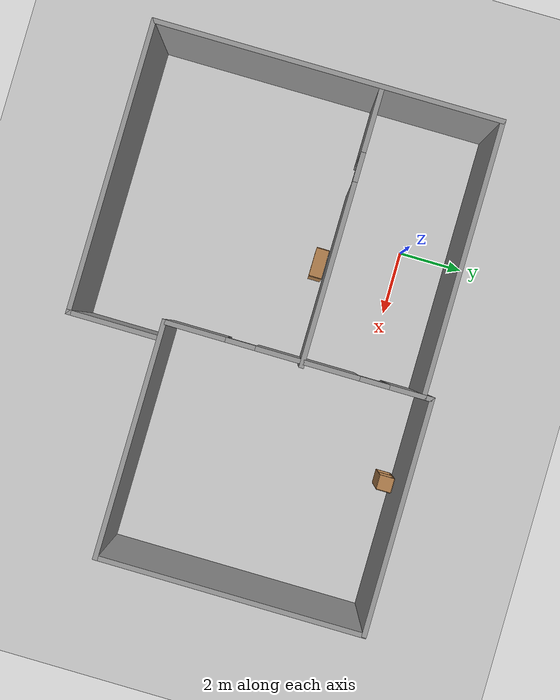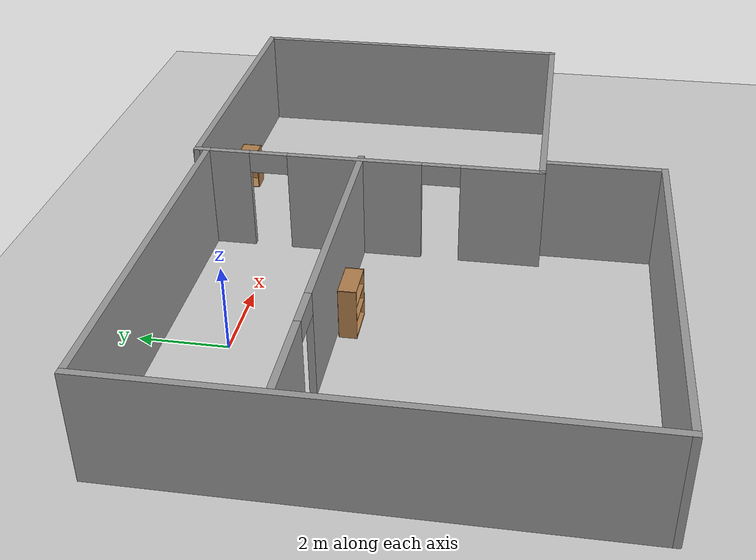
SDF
<sdf version="1.6">
 <world name="default">
  <light name="sun" type="directional">
   <pose>0 0 10 0 -0 0</pose>
   <diffuse>0.8 0.8 0.8 1</diffuse>
   <specular>0.1 0.1 0.1 1</specular>
   <attenuation>
    <range>1000</range>
    <constant>0.9</constant>
    <linear>0.01</linear>
    <quadratic>0.001</quadratic>
   </attenuation>
   <direction>-0.5 0.5 -1</direction>
  </light>
  <model name="ground_plane">
   <static>1</static>
   <link name="link">
    <collision name="collision">
     <geometry><plane><normal>0 0 1</normal><size>100 100</size></plane></geometry>
     <surface><friction><ode><mu>100</mu><mu2>50</mu2></ode></friction></surface>
    </collision>
    <visual name="visual">
     <cast_shadows>0</cast_shadows>
     <geometry><plane><normal>0 0 1</normal><size>100 100</size></plane></geometry>
     <material>
      <script><uri>file://media/materials/scripts/gazebo.material</uri><name>Gazebo/Grey</name></script>
     </material>
    </visual>
   </link>
  </model>
  <gravity>0 0 -9.8</gravity>
  <magnetic_field>6e-06 2.3e-05 -4.2e-05</magnetic_field>
  <atmosphere type="adiabatic"/>
  <physics name="default_physics" default="0" type="ode">
   <max_step_size>0.001</max_step_size>
   <real_time_factor>1</real_time_factor>
   <real_time_update_rate>1000</real_time_update_rate>
  </physics>
  <scene><ambient>0.4 0.4 0.4 1</ambient><background>0.7 0.7 0.7 1</background><shadows>1</shadows></scene>
  <spherical_coordinates>
   <surface_model>EARTH_WGS84</surface_model>
   <latitude_deg>0</latitude_deg>
   <longitude_deg>0</longitude_deg>
   <elevation>0</elevation>
   <heading_deg>0</heading_deg>
  </spherical_coordinates>
  <model name="littlehouse">
   <pose>3.5511 -3.64478 0 0 -0 0</pose>
   <link name="Wall_17">
    <collision name="Wall_17_Collision">
     <geometry><box><size>10.75 0.15 2.5</size></box></geometry>
     <pose>0 0 1.25 0 -0 0</pose>
    </collision>
    <visual name="Wall_17_Visual">
     <pose>0 0 1.25 0 -0 0</pose>
     <geometry><box><size>10.75 0.15 2.5</size></box></geometry>
     <material>
      <script><uri>file://media/materials/scripts/gazebo.material</uri><name>Gazebo/Grey</name></script>
      <ambient>1 1 1 1</ambient>
     </material>
    </visual>
    <pose>-7.725 -0.125 0 0 -0 1.5708</pose>
   </link>
   <link name="Wall_18">
    <collision name="Wall_18_Collision">
     <geometry><box><size>8.5 0.15 2.5</size></box></geometry>
     <pose>0 0 1.25 0 -0 0</pose>
    </collision>
    <visual name="Wall_18_Visual">
     <pose>0 0 1.25 0 -0 0</pose>
     <geometry><box><size>8.5 0.15 2.5</size></box></geometry>
     <material>
      <script><uri>file://media/materials/scripts/gazebo.material</uri><name>Gazebo/Grey</name></script>
      <ambient>1 1 1 1</ambient>
     </material>
    </visual>
    <pose>-3.55 5.175 0 0 -0 0</pose>
   </link>
   <link name="Wall_19">
    <pose>0.625 1.25 0 0 0 -1.5708</pose>
    <visual name="Wall_19_Visual_0">
     <pose>-3.44751 0 1.25 0 -0 0</pose>
     <geometry><box><size>1.10499 0.15 2.5</size></box></geometry>
     <material>
      <script><uri>file://media/materials/scripts/gazebo.material</uri><name>Gazebo/Grey</name></script>
      <ambient>1 1 1 1</ambient>
     </material>
    </visual>
    <collision name="Wall_19_Collision_0">
     <geometry><box><size>1.10499 0.15 2.5</size></box></geometry>
     <pose>-3.44751 0 1.25 0 -0 0</pose>
    </collision>
    <visual name="Wall_19_Visual_1">
     <pose>-0.411919 0 1.25 0 -0 0</pose>
     <geometry><box><size>3.16619 0.15 2.5</size></box></geometry>
     <material>
      <script><uri>file://media/materials/scripts/gazebo.material</uri><name>Gazebo/Grey</name></script>
      <ambient>1 1 1 1</ambient>
     </material>
    </visual>
    <collision name="Wall_19_Collision_1">
     <geometry><box><size>3.16619 0.15 2.5</size></box></geometry>
     <pose>-0.411919 0 1.25 0 -0 0</pose>
    </collision>
    <visual name="Wall_19_Visual_2">
     <pose>3.03559 0 1.25 0 -0 0</pose>
     <geometry><box><size>1.92882 0.15 2.5</size></box></geometry>
     <material>
      <script><uri>file://media/materials/scripts/gazebo.material</uri><name>Gazebo/Grey</name></script>
      <ambient>1 1 1 1</ambient>
     </material>
    </visual>
    <collision name="Wall_19_Collision_2">
     <geometry><box><size>1.92882 0.15 2.5</size></box></geometry>
     <pose>3.03559 0 1.25 0 -0 0</pose>
    </collision>
    <visual name="Wall_19_Visual_3">
     <pose>-2.44501 0 2.25 0 -0 0</pose>
     <geometry><box><size>0.9 0.15 0.5</size></box></geometry>
     <material>
      <script><uri>file://media/materials/scripts/gazebo.material</uri><name>Gazebo/Grey</name></script>
      <ambient>1 1 1 1</ambient>
     </material>
    </visual>
    <collision name="Wall_19_Collision_3">
     <geometry><box><size>0.9 0.15 0.5</size></box></geometry>
     <pose>-2.44501 0 2.25 0 -0 0</pose>
    </collision>
    <visual name="Wall_19_Visual_4">
     <pose>1.62118 0 2.25 0 -0 0</pose>
     <geometry><box><size>0.9 0.15 0.5</size></box></geometry>
     <material>
      <script><uri>file://media/materials/scripts/gazebo.material</uri><name>Gazebo/Grey</name></script>
      <ambient>1 1 1 1</ambient>
     </material>
    </visual>
    <collision name="Wall_19_Collision_4">
     <geometry><box><size>0.9 0.15 0.5</size></box></geometry>
     <pose>1.62118 0 2.25 0 -0 0</pose>
    </collision>
   </link>
   <link name="Wall_20">
    <collision name="Wall_20_Collision">
     <geometry><box><size>7.25 0.15 2.5</size></box></geometry>
     <pose>0 0 1.25 0 -0 0</pose>
    </collision>
    <visual name="Wall_20_Visual">
     <pose>0 0 1.25 0 -0 0</pose>
     <geometry><box><size>7.25 0.15 2.5</size></box></geometry>
     <material>
      <script><uri>file://media/materials/scripts/gazebo.material</uri><name>Gazebo/Grey</name></script>
      <ambient>1 1 1 1</ambient>
     </material>
    </visual>
    <pose>4.175 -2.675 0 0 -0 0</pose>
   </link>
   <link name="Wall_21">
    <collision name="Wall_21_Collision">
     <geometry><box><size>8.25 0.15 2.5</size></box></geometry>
     <pose>0 0 1.25 0 -0 0</pose>
    </collision>
    <visual name="Wall_21_Visual">
     <pose>0 0 1.25 0 -0 0</pose>
     <geometry><box><size>8.25 0.15 2.5</size></box></geometry>
     <material>
      <script><uri>file://media/materials/scripts/gazebo.material</uri><name>Gazebo/Grey</name></script>
      <ambient>1 1 1 1</ambient>
     </material>
    </visual>
    <pose>7.725 1.375 0 0 -0 1.5708</pose>
   </link>
   <link name="Wall_22">
    <collision name="Wall_22_Collision">
     <geometry><box><size>7.25 0.15 2.5</size></box></geometry>
     <pose>0 0 1.25 0 -0 0</pose>
    </collision>
    <visual name="Wall_22_Visual">
     <pose>0 0 1.25 0 -0 0</pose>
     <geometry><box><size>7.25 0.15 2.5</size></box></geometry>
     <material>
      <script><uri>file://media/materials/scripts/gazebo.material</uri><name>Gazebo/Grey</name></script>
      <ambient>1 1 1 1</ambient>
     </material>
    </visual>
    <pose>4.175 5.425 0 0 -0 3.14159</pose>
   </link>
   <link name="Wall_23">
    <collision name="Wall_23_Collision">
     <geometry><box><size>0.4 0.15 2.5</size></box></geometry>
     <pose>0 0 1.25 0 -0 0</pose>
    </collision>
    <visual name="Wall_23_Visual">
     <pose>0 0 1.25 0 -0 0</pose>
     <geometry><box><size>0.4 0.15 2.5</size></box></geometry>
     <material>
      <script><uri>file://media/materials/scripts/gazebo.material</uri><name>Gazebo/Grey</name></script>
      <ambient>1 1 1 1</ambient>
     </material>
    </visual>
    <pose>0.625 5.3 0 0 0 -1.5708</pose>
   </link>
   <link name="Wall_25">
    <pose>-3.44667 1.51978 0 0 -0 0</pose>
    <visual name="Wall_25_Visual_0">
     <pose>-3.26498 0 1.25 0 -0 0</pose>
     <geometry><box><size>1.97003 0.15 2.5</size></box></geometry>
     <material>
      <script><uri>file://media/materials/scripts/gazebo.material</uri><name>Gazebo/Grey</name></script>
      <ambient>1 1 1 1</ambient>
     </material>
    </visual>
    <collision name="Wall_25_Collision_0">
     <geometry><box><size>1.97003 0.15 2.5</size></box></geometry>
     <pose>-3.26498 0 1.25 0 -0 0</pose>
    </collision>
    <visual name="Wall_25_Visual_1">
     <pose>1.43502 0 1.25 0 -0 0</pose>
     <geometry><box><size>5.62997 0.15 2.5</size></box></geometry>
     <material>
      <script><uri>file://media/materials/scripts/gazebo.material</uri><name>Gazebo/Grey</name></script>
      <ambient>1 1 1 1</ambient>
     </material>
    </visual>
    <collision name="Wall_25_Collision_1">
     <geometry><box><size>5.62997 0.15 2.5</size></box></geometry>
     <pose>1.43502 0 1.25 0 -0 0</pose>
    </collision>
    <visual name="Wall_25_Visual_2">
     <pose>-1.82997 0 2.25 0 -0 0</pose>
     <geometry><box><size>0.9 0.15 0.5</size></box></geometry>
     <material>
      <script><uri>file://media/materials/scripts/gazebo.material</uri><name>Gazebo/Grey</name></script>
      <ambient>1 1 1 1</ambient>
     </material>
    </visual>
    <collision name="Wall_25_Collision_2">
     <geometry><box><size>0.9 0.15 0.5</size></box></geometry>
     <pose>-1.82997 0 2.25 0 -0 0</pose>
    </collision>
   </link>
   <link name="Wall_27">
    <collision name="Wall_27_Collision">
     <geometry><box><size>9 0.15 2.5</size></box></geometry>
     <pose>0 0 1.25 0 -0 0</pose>
    </collision>
    <visual name="Wall_27_Visual">
     <pose>0 0 1.25 0 -0 0</pose>
     <geometry><box><size>9 0.15 2.5</size></box></geometry>
     <material>
      <script><uri>file://media/materials/scripts/gazebo.material</uri><name>Gazebo/Grey</name></script>
      <ambient>1 1 1 1</ambient>
     </material>
    </visual>
    <pose>-3.3 -5.425 0 0 -0 0</pose>
   </link>
   <link name="Wall_28">
    <collision name="Wall_28_Collision">
     <geometry><box><size>2.75 0.15 2.5</size></box></geometry>
     <pose>0 0 1.25 0 -0 0</pose>
    </collision>
    <visual name="Wall_28_Visual">
     <pose>0 0 1.25 0 -0 0</pose>
     <geometry><box><size>2.75 0.15 2.5</size></box></geometry>
     <material>
      <script><uri>file://media/materials/scripts/gazebo.material</uri><name>Gazebo/Grey</name></script>
      <ambient>1 1 1 1</ambient>
     </material>
    </visual>
    <pose>1.125 -4.125 0 0 -0 1.5708</pose>
   </link>
   <static>1</static>
  </model>
  <model name="bookshelf">
   <static>1</static>
   <link name="link">
    <inertial><mass>1</mass></inertial>
    <collision name="back">
     <pose>0 0.005 0.6 0 -0 0</pose>
     <geometry><box><size>0.9 0.01 1.2</size></box></geometry>
    </collision>
    <visual name="visual1">
     <pose>0 0.005 0.6 0 -0 0</pose>
     <geometry><box><size>0.9 0.01 1.2</size></box></geometry>
     <material>
      <script><uri>file://media/materials/scripts/gazebo.material</uri><name>Gazebo/Wood</name></script>
     </material>
    </visual>
    <collision name="left_side">
     <pose>0.45 -0.195 0.6 0 -0 0</pose>
     <geometry><box><size>0.02 0.4 1.2</size></box></geometry>
    </collision>
    <visual name="visual2">
     <pose>0.45 -0.195 0.6 0 -0 0</pose>
     <geometry><box><size>0.02 0.4 1.2</size></box></geometry>
     <material>
      <script><uri>file://media/materials/scripts/gazebo.material</uri><name>Gazebo/Wood</name></script>
     </material>
    </visual>
    <collision name="right_side">
     <pose>-0.45 -0.195 0.6 0 -0 0</pose>
     <geometry><box><size>0.02 0.4 1.2</size></box></geometry>
    </collision>
    <visual name="visual3">
     <pose>-0.45 -0.195 0.6 0 -0 0</pose>
     <geometry><box><size>0.02 0.4 1.2</size></box></geometry>
     <material>
      <script><uri>file://media/materials/scripts/gazebo.material</uri><name>Gazebo/Wood</name></script>
     </material>
    </visual>
    <collision name="bottom">
     <pose>0 -0.195 0.03 0 -0 0</pose>
     <geometry><box><size>0.88 0.4 0.06</size></box></geometry>
    </collision>
    <visual name="visual4">
     <pose>0 -0.195 0.03 0 -0 0</pose>
     <geometry><box><size>0.88 0.4 0.06</size></box></geometry>
     <material>
      <script><uri>file://media/materials/scripts/gazebo.material</uri><name>Gazebo/Wood</name></script>
     </material>
    </visual>
    <collision name="top">
     <pose>0 -0.195 1.19 0 -0 0</pose>
     <geometry><box><size>0.88 0.4 0.02</size></box></geometry>
    </collision>
    <visual name="visual5">
     <pose>0 -0.195 1.19 0 -0 0</pose>
     <geometry><box><size>0.88 0.4 0.02</size></box></geometry>
     <material>
      <script><uri>file://media/materials/scripts/gazebo.material</uri><name>Gazebo/Wood</name></script>
     </material>
    </visual>
    <collision name="low_shelf">
     <pose>0 -0.195 0.43 0 -0 0</pose>
     <geometry><box><size>0.88 0.4 0.02</size></box></geometry>
    </collision>
    <visual name="visual6">
     <pose>0 -0.195 0.43 0 -0 0</pose>
     <geometry><box><size>0.88 0.4 0.02</size></box></geometry>
     <material>
      <script><uri>file://media/materials/scripts/gazebo.material</uri><name>Gazebo/Wood</name></script>
     </material>
    </visual>
    <collision name="high_shelf">
     <pose>0 -0.195 0.8 0 -0 0</pose>
     <geometry><box><size>0.88 0.4 0.02</size></box></geometry>
    </collision>
    <visual name="visual7">
     <pose>0 -0.195 0.8 0 -0 0</pose>
     <geometry><box><size>0.88 0.4 0.02</size></box></geometry>
     <material>
      <script><uri>file://media/materials/scripts/gazebo.material</uri><name>Gazebo/Wood</name></script>
     </material>
    </visual>
   </link>
   <pose>1.15357 -2.25464 0 0 -0 0</pose>
  </model>
  <model name="cabinet">
   <static>1</static>
   <link name="cabinet_bottom_plate">
    <inertial>
     <pose>0 0 -1 0 -0 0</pose>
     <inertia><ixx>2.05</ixx><ixy>0</ixy><ixz>0</ixz><iyy>2.05</iyy><iyz>0</iyz><izz>2.05</izz></inertia>
     <mass>25</mass>
    </inertial>
    <collision name="cabinet_bottom_plate_geom">
     <pose>0 0 0.01 0 -0 0</pose>
     <geometry><box><size>0.45 0.45 0.02</size></box></geometry>
    </collision>
    <visual name="cabinet_bottom_plate_geom_visual">
     <pose>0 0 0.01 0 -0 0</pose>
     <geometry><box><size>0.45 0.45 0.02</size></box></geometry>
     <material>
      <script><uri>file://media/materials/scripts/gazebo.material</uri><name>Gazebo/Wood</name></script>
     </material>
    </visual>
    <collision name="cabinet_bottom_plate_geom_cabinet_back_plate">
     <pose>0.235 0 0.51 0 -0 0</pose>
     <geometry><box><size>0.02 0.45 1.02</size></box></geometry>
    </collision>
    <visual name="cabinet_bottom_plate_geom_cabinet_back_plate_visual">
     <pose>0.235 0 0.51 0 -0 0</pose>
     <geometry><box><size>0.02 0.45 1.02</size></box></geometry>
     <material>
      <script><uri>file://media/materials/scripts/gazebo.material</uri><name>Gazebo/Wood</name></script>
     </material>
    </visual>
    <collision name="cabinet_bottom_plate_geom_cabinet_left_plate">
     <pose>0 0.235 0.51 0 -0 0</pose>
     <geometry><box><size>0.45 0.02 1.02</size></box></geometry>
    </collision>
    <visual name="cabinet_bottom_plate_geom_cabinet_left_plate_visual">
     <pose>0 0.235 0.51 0 -0 0</pose>
     <geometry><box><size>0.45 0.02 1.02</size></box></geometry>
     <material>
      <script><uri>file://media/materials/scripts/gazebo.material</uri><name>Gazebo/Wood</name></script>
     </material>
    </visual>
    <collision name="cabinet_bottom_plate_geom_cabinet_middle_plate">
     <pose>0 0 0.51 0 -0 0</pose>
     <geometry><box><size>0.45 0.45 0.02</size></box></geometry>
    </collision>
    <visual name="cabinet_bottom_plate_geom_cabinet_middle_plate_visual">
     <pose>0 0 0.51 0 -0 0</pose>
     <geometry><box><size>0.45 0.45 0.02</size></box></geometry>
     <material>
      <script><uri>file://media/materials/scripts/gazebo.material</uri><name>Gazebo/Wood</name></script>
     </material>
    </visual>
    <collision name="cabinet_bottom_plate_geom_cabinet_right_plate">
     <pose>0 -0.235 0.51 0 -0 0</pose>
     <geometry><box><size>0.45 0.02 1.02</size></box></geometry>
    </collision>
    <visual name="cabinet_bottom_plate_geom_cabinet_right_plate_visual">
     <pose>0 -0.235 0.51 0 -0 0</pose>
     <geometry><box><size>0.45 0.02 1.02</size></box></geometry>
     <material>
      <script><uri>file://media/materials/scripts/gazebo.material</uri><name>Gazebo/Wood</name></script>
     </material>
    </visual>
    <collision name="cabinet_bottom_plate_geom_cabinet_top_plate">
     <pose>0 0 1.01 0 -0 0</pose>
     <geometry><box><size>0.45 0.45 0.02</size></box></geometry>
    </collision>
    <visual name="cabinet_bottom_plate_geom_cabinet_top_plate_visual">
     <pose>0 0 1.01 0 -0 0</pose>
     <geometry><box><size>0.45 0.45 0.02</size></box></geometry>
     <material>
      <script><uri>file://media/materials/scripts/gazebo.material</uri><name>Gazebo/Wood</name></script>
     </material>
    </visual>
   </link>
   <pose>7.10886 1.40847 0 0 -0 0</pose>
  </model>
 </world>
</sdf>
